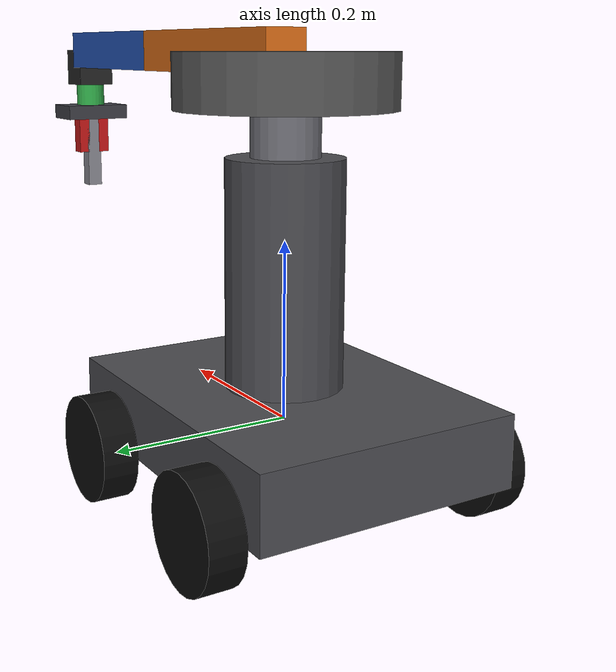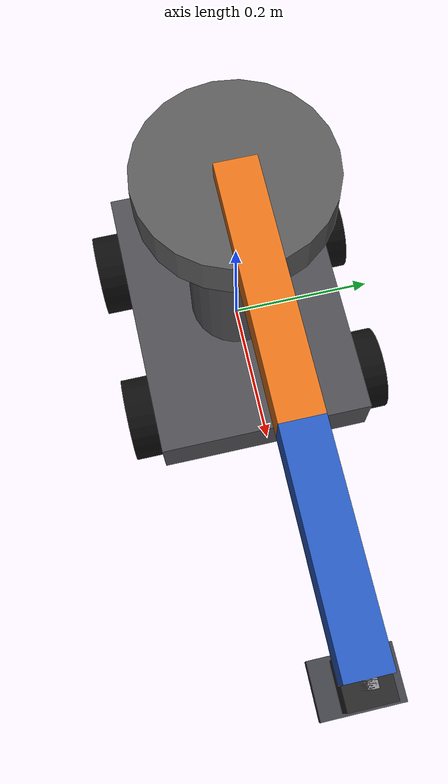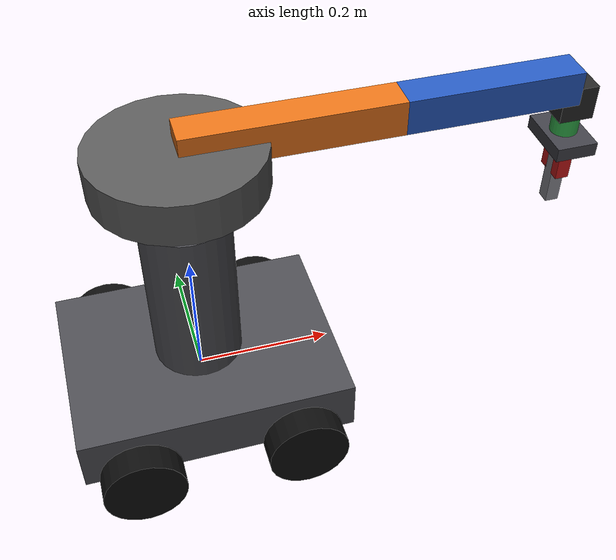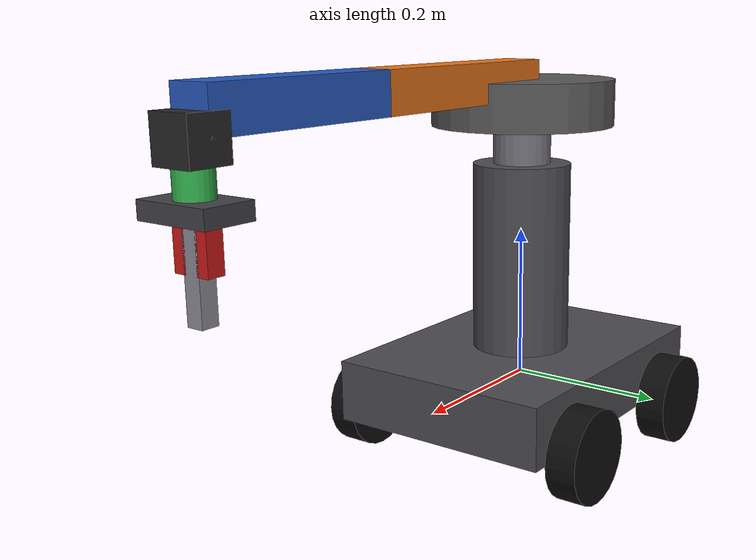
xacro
<?xml version="1.0"?>
<robot name="scara_arm" xmlns:xacro="http://www.ros.org/wiki/xacro">

  <!-- sim_world:=true (used by teleop.launch.py) adds a world root with virtual joints for the  -->
  <!-- base pose, plus a pickable object and a place pad, so everything renders in RobotModel.  -->
  <xacro:arg name="sim_world" default="false"/>

  <!-- CONSTANTS / DIMENSIONS                                        -->
  <xacro:property name="base_radius"  value="0.12"/>
  <xacro:property name="base_height"  value="0.06"/>

  <xacro:property name="link1_len"    value="0.30"/>
  <xacro:property name="link2_len"    value="0.25"/>
  <xacro:property name="link_width"   value="0.05"/>
  <xacro:property name="link_height"  value="0.05"/>

  <xacro:property name="slider_side"  value="0.05"/>
  <xacro:property name="slider_travel" value="0.20"/>   <!-- prismatic joint3 range -->
  <xacro:property name="rail_thickness" value="0.02"/>  <!-- visual guide rail, purely cosmetic -->

  <xacro:property name="wrist_radius" value="0.02"/>
  <xacro:property name="wrist_height" value="0.03"/>

  <xacro:property name="gripper_base_x" value="0.06"/>
  <xacro:property name="gripper_base_y" value="0.09"/>
  <xacro:property name="gripper_base_z" value="0.02"/>

  <xacro:property name="finger_x" value="0.02"/>
  <xacro:property name="finger_y" value="0.015"/>
  <xacro:property name="finger_z" value="0.05"/>
  <xacro:property name="finger_open_y" value="0.035"/>   <!-- half-gap between fingers, fully open -->
  <xacro:property name="finger_travel" value="0.02"/>    <!-- how far each finger slides to close -->

  <xacro:property name="PI" value="3.14159265"/>

  <!-- Mobile chassis + tyres -->
  <xacro:property name="chassis_x" value="0.40"/>
  <xacro:property name="chassis_y" value="0.30"/>
  <xacro:property name="chassis_z" value="0.08"/>
  <xacro:property name="wheel_radius" value="0.06"/>
  <xacro:property name="wheel_width"  value="0.04"/>
  <xacro:property name="wheel_track"  value="${chassis_y + wheel_width}"/>  <!-- left-right distance between wheel centers -->

  <!-- Crane lift column – telescoping design:                        -->
  <!--   outer_sleeve : fixed to chassis, purely visual housing        -->
  <!--   inner_mast   : slides up/down inside the sleeve (prismatic)   -->
  <xacro:property name="outer_sleeve_radius" value="0.065"/>
  <xacro:property name="outer_sleeve_height" value="0.25"/>   <!-- fixed housing height -->
  <xacro:property name="mast_radius" value="0.038"/>          <!-- inner column, thinner so it looks nested -->
  <xacro:property name="mast_len" value="0.30"/>
  <xacro:property name="crane_lift_travel" value="0.10"/>
  <xacro:property name="crane_lift_down" value="0.14"/>       <!-- 0.14 puts the mast bottom at ground level -->

  <!-- MATERIALS                                                     -->
  <material name="base_grey">   <color rgba="0.35 0.35 0.35 1.0"/> </material>
  <material name="arm_orange">  <color rgba="0.90 0.45 0.10 1.0"/> </material>
  <material name="arm_blue">    <color rgba="0.15 0.35 0.75 1.0"/> </material>
  <material name="slider_dark"> <color rgba="0.15 0.15 0.15 1.0"/> </material>
  <material name="rail_grey">   <color rgba="0.55 0.55 0.58 1.0"/> </material>
  <material name="wrist_green"> <color rgba="0.20 0.70 0.30 1.0"/> </material>
  <material name="gripper_grey"><color rgba="0.25 0.25 0.28 1.0"/> </material>
  <material name="finger_red">  <color rgba="0.80 0.10 0.10 1.0"/> </material>
  <material name="chassis_grey"><color rgba="0.30 0.30 0.32 1.0"/> </material>
  <material name="wheel_black"> <color rgba="0.05 0.05 0.05 1.0"/> </material>
  <material name="mast_grey">   <color rgba="0.45 0.45 0.48 1.0"/> </material>
  <material name="payload_yellow"><color rgba="0.95 0.85 0.10 1.0"/> </material>
  <material name="pad_green">   <color rgba="0.15 0.75 0.30 1.0"/> </material>

  <!-- REUSABLE INERTIA MACROS                                       -->
  <xacro:macro name="box_inertial" params="mass x y z">
    <inertial>
      <mass value="${mass}"/>
      <inertia
        ixx="${(1/12.0) * mass * (y*y + z*z)}" ixy="0.0" ixz="0.0"
        iyy="${(1/12.0) * mass * (x*x + z*z)}" iyz="0.0"
        izz="${(1/12.0) * mass * (x*x + y*y)}"/>
    </inertial>
  </xacro:macro>

  <xacro:macro name="cylinder_inertial" params="mass r h">
    <inertial>
      <mass value="${mass}"/>
      <inertia
        ixx="${(1/12.0) * mass * (3*r*r + h*h)}" ixy="0.0" ixz="0.0"
        iyy="${(1/12.0) * mass * (3*r*r + h*h)}" iyz="0.0"
        izz="${0.5 * mass * r * r}"/>
    </inertial>
  </xacro:macro>

  <!-- MOBILE CHASSIS                                                 -->
  <!-- chassis_link has no parent joint here. An external node          -->
  <!-- ("fake_diff_drive") publishes the world->chassis_link TF at    -->
  <!-- runtime based on how far the wheels have turned, so the robot  -->
  <!-- actually translates instead of just spinning in place.         -->
  <link name="chassis_link">
    <visual>
      <origin xyz="0 0 0" rpy="0 0 0"/>
      <geometry><box size="${chassis_x} ${chassis_y} ${chassis_z}"/></geometry>
      <material name="chassis_grey"/>
    </visual>
    <collision>
      <origin xyz="0 0 0" rpy="0 0 0"/>
      <geometry><box size="${chassis_x} ${chassis_y} ${chassis_z}"/></geometry>
    </collision>
    <xacro:box_inertial mass="4.0" x="${chassis_x}" y="${chassis_y}" z="${chassis_z}"/>
  </link>

  <xacro:if value="$(arg sim_world)">
    <link name="world"/>

    <!-- Virtual planar base: x, y and yaw joints let a node place the whole robot in the world. -->
    <link name="chassis_x_link"/>
    <link name="chassis_y_link"/>
    <joint name="chassis_x_joint" type="prismatic">
      <parent link="world"/>
      <child link="chassis_x_link"/>
      <axis xyz="1 0 0"/>
      <limit lower="-100" upper="100" effort="1000" velocity="10"/>
    </joint>
    <joint name="chassis_y_joint" type="prismatic">
      <parent link="chassis_x_link"/>
      <child link="chassis_y_link"/>
      <axis xyz="0 1 0"/>
      <limit lower="-100" upper="100" effort="1000" velocity="10"/>
    </joint>
    <joint name="chassis_yaw_joint" type="continuous">
      <parent link="chassis_y_link"/>
      <child link="chassis_link"/>
      <origin xyz="0 0 ${wheel_radius + chassis_z/2}" rpy="0 0 0"/>
      <axis xyz="0 0 1"/>
    </joint>

    <!-- Pickable object: free x, y, z, yaw relative to world (the teleop node drives these). -->
    <link name="obj_x_link"/>
    <link name="obj_y_link"/>
    <link name="obj_z_link"/>
    <joint name="obj_x_joint" type="prismatic">
      <parent link="world"/>
      <child link="obj_x_link"/>
      <axis xyz="1 0 0"/>
      <limit lower="-100" upper="100" effort="1000" velocity="10"/>
    </joint>
    <joint name="obj_y_joint" type="prismatic">
      <parent link="obj_x_link"/>
      <child link="obj_y_link"/>
      <axis xyz="0 1 0"/>
      <limit lower="-100" upper="100" effort="1000" velocity="10"/>
    </joint>
    <joint name="obj_z_joint" type="prismatic">
      <parent link="obj_y_link"/>
      <child link="obj_z_link"/>
      <axis xyz="0 0 1"/>
      <limit lower="-1" upper="5" effort="1000" velocity="10"/>
    </joint>
    <joint name="obj_yaw_joint" type="continuous">
      <parent link="obj_z_link"/>
      <child link="payload"/>
      <axis xyz="0 0 1"/>
    </joint>
    <link name="payload">
      <visual>
        <geometry><box size="0.04 0.04 0.04"/></geometry>
        <material name="payload_yellow"/>
      </visual>
    </link>

    <!-- ── CARGO 2 (RED) ─────────────────────────────────────────────────── -->
    <link name="cargo2_x_link"/>
    <link name="cargo2_y_link"/>
    <link name="cargo2_z_link"/>
    <joint name="cargo2_x_joint" type="prismatic">
      <parent link="world"/><child link="cargo2_x_link"/>
      <axis xyz="1 0 0"/>
      <limit lower="-100" upper="100" effort="1000" velocity="10"/>
    </joint>
    <joint name="cargo2_y_joint" type="prismatic">
      <parent link="cargo2_x_link"/><child link="cargo2_y_link"/>
      <axis xyz="0 1 0"/>
      <limit lower="-100" upper="100" effort="1000" velocity="10"/>
    </joint>
    <joint name="cargo2_z_joint" type="prismatic">
      <parent link="cargo2_y_link"/><child link="cargo2_z_link"/>
      <axis xyz="0 0 1"/>
      <limit lower="-1" upper="5" effort="1000" velocity="10"/>
    </joint>
    <joint name="cargo2_yaw_joint" type="continuous">
      <parent link="cargo2_z_link"/><child link="cargo2_payload"/>
      <axis xyz="0 0 1"/>
    </joint>
    <link name="cargo2_payload">
      <visual>
        <geometry><box size="0.04 0.04 0.04"/></geometry>
        <material name="finger_red"/>
      </visual>
    </link>

    <!-- ── CARGO 3 (BLUE) ────────────────────────────────────────────────── -->
    <link name="cargo3_x_link"/>
    <link name="cargo3_y_link"/>
    <link name="cargo3_z_link"/>
    <joint name="cargo3_x_joint" type="prismatic">
      <parent link="world"/><child link="cargo3_x_link"/>
      <axis xyz="1 0 0"/>
      <limit lower="-100" upper="100" effort="1000" velocity="10"/>
    </joint>
    <joint name="cargo3_y_joint" type="prismatic">
      <parent link="cargo3_x_link"/><child link="cargo3_y_link"/>
      <axis xyz="0 1 0"/>
      <limit lower="-100" upper="100" effort="1000" velocity="10"/>
    </joint>
    <joint name="cargo3_z_joint" type="prismatic">
      <parent link="cargo3_y_link"/><child link="cargo3_z_link"/>
      <axis xyz="0 0 1"/>
      <limit lower="-1" upper="5" effort="1000" velocity="10"/>
    </joint>
    <joint name="cargo3_yaw_joint" type="continuous">
      <parent link="cargo3_z_link"/><child link="cargo3_payload"/>
      <axis xyz="0 0 1"/>
    </joint>
    <link name="cargo3_payload">
      <visual>
        <geometry><box size="0.04 0.04 0.04"/></geometry>
        <material name="arm_blue"/>
      </visual>
    </link>

    <!-- Place pad on the ground -->
    <joint name="pad_joint" type="fixed">
      <parent link="world"/>
      <child link="pad"/>
      <origin xyz="0.30 -0.32 0.002" rpy="0 0 0"/>
    </joint>
    <link name="pad">
      <visual>
        <geometry><box size="0.12 0.12 0.004"/></geometry>
        <material name="pad_green"/>
      </visual>
    </link>

  </xacro:if>

  <!-- Four tyres. The 90deg roll about X lays each cylinder on its side so its  -->
  <!-- rotational axis (local Z, matching the joint's axis) points along Y,      -->
  <!-- giving a properly oriented rolling wheel.                                 -->
  <xacro:macro name="wheel" params="name x_off y_off">
    <joint name="${name}_wheel_joint" type="continuous">
      <parent link="chassis_link"/>
      <child link="${name}_wheel"/>
      <origin xyz="${x_off} ${y_off} ${-chassis_z/2}" rpy="1.5708 0 0"/>
      <axis xyz="0 0 1"/>
      <limit effort="10.0" velocity="10.0"/>
    </joint>
    <link name="${name}_wheel">
      <visual>
        <geometry><cylinder radius="${wheel_radius}" length="${wheel_width}"/></geometry>
        <material name="wheel_black"/>
      </visual>
      <collision>
        <geometry><cylinder radius="${wheel_radius}" length="${wheel_width}"/></geometry>
      </collision>
      <xacro:cylinder_inertial mass="0.3" r="${wheel_radius}" h="${wheel_width}"/>
    </link>
  </xacro:macro>

  <!-- Rear wheel on each side mimics its front wheel 1:1, so the two wheels on   -->
  <!-- a side always spin together like they would on a real rigid axle, and     -->
  <!-- only ONE slider per side shows up in the GUI (front_left / front_right).  -->
  <xacro:macro name="wheel_mimic" params="name x_off y_off mimic_joint">
    <joint name="${name}_wheel_joint" type="continuous">
      <parent link="chassis_link"/>
      <child link="${name}_wheel"/>
      <origin xyz="${x_off} ${y_off} ${-chassis_z/2}" rpy="1.5708 0 0"/>
      <axis xyz="0 0 1"/>
      <limit effort="10.0" velocity="10.0"/>
      <mimic joint="${mimic_joint}" multiplier="1.0" offset="0.0"/>
    </joint>
    <link name="${name}_wheel">
      <visual>
        <geometry><cylinder radius="${wheel_radius}" length="${wheel_width}"/></geometry>
        <material name="wheel_black"/>
      </visual>
      <collision>
        <geometry><cylinder radius="${wheel_radius}" length="${wheel_width}"/></geometry>
      </collision>
      <xacro:cylinder_inertial mass="0.3" r="${wheel_radius}" h="${wheel_width}"/>
    </link>
  </xacro:macro>

  <xacro:wheel       name="front_left"  x_off="${chassis_x/2 - 0.08}"    y_off="${chassis_y/2 + wheel_width/2}"/>
  <xacro:wheel       name="front_right" x_off="${chassis_x/2 - 0.08}"    y_off="${-(chassis_y/2 + wheel_width/2)}"/>
  <xacro:wheel_mimic name="rear_left"   x_off="${-(chassis_x/2 - 0.08)}" y_off="${chassis_y/2 + wheel_width/2}"    mimic_joint="front_left_wheel_joint"/>
  <xacro:wheel_mimic name="rear_right"  x_off="${-(chassis_x/2 - 0.08)}" y_off="${-(chassis_y/2 + wheel_width/2)}" mimic_joint="front_right_wheel_joint"/>

  <!-- CRANE LIFT – TELESCOPING DESIGN                               -->
  <!-- A fixed OUTER SLEEVE bolted to the chassis (cosmetic housing) -->
  <!-- and a thinner INNER COLUMN that slides up/down through it.    -->

  <!-- Fixed outer sleeve (housing) – does NOT move -->
  <joint name="outer_sleeve_joint" type="fixed">
    <parent link="chassis_link"/>
    <child link="outer_sleeve_link"/>
    <origin xyz="0 0 ${chassis_z/2}" rpy="0 0 0"/>
  </joint>

  <link name="outer_sleeve_link">
    <visual>
      <origin xyz="0 0 ${outer_sleeve_height/2}" rpy="0 0 0"/>
      <geometry><cylinder radius="${outer_sleeve_radius}" length="${outer_sleeve_height}"/></geometry>
      <material name="chassis_grey"/>
    </visual>
    <collision>
      <origin xyz="0 0 ${outer_sleeve_height/2}" rpy="0 0 0"/>
      <geometry><cylinder radius="${outer_sleeve_radius}" length="${outer_sleeve_height}"/></geometry>
    </collision>
    <xacro:cylinder_inertial mass="0.5" r="${outer_sleeve_radius}" h="${outer_sleeve_height}"/>
  </link>

  <!-- Inner column (slides up/down inside the sleeve) -->
  <joint name="crane_lift_joint" type="prismatic">
    <parent link="chassis_link"/>
    <child link="mast_link"/>
    <origin xyz="0 0 ${chassis_z/2}" rpy="0 0 0"/>
    <axis xyz="0 0 1"/>
    <limit lower="${-crane_lift_down}" upper="${crane_lift_travel}" effort="50.0" velocity="0.1"/>
  </joint>

  <link name="mast_link">
    <visual>
      <origin xyz="0 0 ${mast_len/2}" rpy="0 0 0"/>
      <geometry><cylinder radius="${mast_radius}" length="${mast_len}"/></geometry>
      <material name="mast_grey"/>
    </visual>
    <collision>
      <origin xyz="0 0 ${mast_len/2}" rpy="0 0 0"/>
      <geometry><cylinder radius="${mast_radius}" length="${mast_len}"/></geometry>
    </collision>
    <xacro:cylinder_inertial mass="1.5" r="${mast_radius}" h="${mast_len}"/>
  </link>

  <joint name="mast_to_base" type="fixed">
    <parent link="mast_link"/>
    <child link="base_link"/>
    <origin xyz="0 0 ${mast_len}" rpy="0 0 0"/>
  </joint>

  <!-- BASE LINK (turntable, joint1 rotates the arm from here)       -->
  <link name="base_link">
    <visual>
      <origin xyz="0 0 ${base_height/2}" rpy="0 0 0"/>
      <geometry><cylinder radius="${base_radius}" length="${base_height}"/></geometry>
      <material name="base_grey"/>
    </visual>
    <collision>
      <origin xyz="0 0 ${base_height/2}" rpy="0 0 0"/>
      <geometry><cylinder radius="${base_radius}" length="${base_height}"/></geometry>
    </collision>
    <xacro:cylinder_inertial mass="2.0" r="${base_radius}" h="${base_height}"/>
  </link>

  <!-- JOINT 1 (revolute, Z-up) : base_link -> link1 (upper arm)     -->
  <joint name="joint1" type="revolute">
    <parent link="base_link"/>
    <child link="link1"/>
    <origin xyz="0 0 ${base_height}" rpy="0 0 0"/>
    <axis xyz="0 0 1"/>
    <limit lower="${-PI}" upper="${PI}" effort="20.0" velocity="2.0"/>
  </joint>

  <link name="link1">
    <visual>
      <origin xyz="${link1_len/2} 0 0" rpy="0 0 0"/>
      <geometry><box size="${link1_len} ${link_width} ${link_height}"/></geometry>
      <material name="arm_orange"/>
    </visual>
    <collision>
      <origin xyz="${link1_len/2} 0 0" rpy="0 0 0"/>
      <geometry><box size="${link1_len} ${link_width} ${link_height}"/></geometry>
    </collision>
    <xacro:box_inertial mass="1.2" x="${link1_len}" y="${link_width}" z="${link_height}"/>
  </link>

  <!-- JOINT 2 (revolute, Z-up) : link1 -> link2 (forearm)           -->
  <joint name="joint2" type="revolute">
    <parent link="link1"/>
    <child link="link2"/>
    <origin xyz="${link1_len} 0 0" rpy="0 0 0"/>
    <axis xyz="0 0 1"/>
    <limit lower="${-2.8}" upper="${2.8}" effort="15.0" velocity="2.0"/>
  </joint>

  <link name="link2">
    <visual>
      <origin xyz="${link2_len/2} 0 0" rpy="0 0 0"/>
      <geometry><box size="${link2_len} ${link_width} ${link_height}"/></geometry>
      <material name="arm_blue"/>
    </visual>
    <collision>
      <origin xyz="${link2_len/2} 0 0" rpy="0 0 0"/>
      <geometry><box size="${link2_len} ${link_width} ${link_height}"/></geometry>
    </collision>
    <xacro:box_inertial mass="0.9" x="${link2_len}" y="${link_width}" z="${link_height}"/>
  </link>

  <!-- VISUAL RAIL (fixed, cosmetic only) : shows the Z-column that   -->
  <!-- the carriage (link3) actually slides along, so the prismatic  -->
  <!-- motion reads as a proper linear slide instead of a floating   -->
  <!-- cube.                                                          -->
  <joint name="rail_mount" type="fixed">
    <parent link="link2"/>
    <child link="z_rail"/>
    <origin xyz="${link2_len} 0 0" rpy="0 0 0"/>
  </joint>

  <link name="z_rail">
    <visual>
      <origin xyz="0 0 ${-slider_travel/2}" rpy="0 0 0"/>
      <geometry><box size="${rail_thickness} ${rail_thickness} ${slider_travel}"/></geometry>
      <material name="rail_grey"/>
    </visual>
    <!-- no collision on the rail: it's a visual guide, not a physical part -->
  </link>

  <!-- JOINT 3 (prismatic, Z) : link2 -> link3 (carriage on the rail) -->
  <!-- limit: 0 = fully retracted (flush with link2), -travel = down  -->
  <joint name="joint3" type="prismatic">
    <parent link="link2"/>
    <child link="link3"/>
    <origin xyz="${link2_len} 0 0" rpy="0 0 0"/>
    <axis xyz="0 0 1"/>
    <limit lower="${-slider_travel}" upper="0.0" effort="30.0" velocity="0.1"/>
  </joint>

  <link name="link3">
    <visual>
      <!-- hangs BELOW the mount point instead of straddling it, so it       -->
      <!-- sits flush against link2 at the retracted (0) position instead   -->
      <!-- of clipping through it -->
      <origin xyz="0 0 ${-slider_side/2}" rpy="0 0 0"/>
      <geometry><box size="${slider_side} ${slider_side} ${slider_side}"/></geometry>
      <material name="slider_dark"/>
    </visual>
    <collision>
      <origin xyz="0 0 ${-slider_side/2}" rpy="0 0 0"/>
      <geometry><box size="${slider_side} ${slider_side} ${slider_side}"/></geometry>
    </collision>
    <xacro:box_inertial mass="0.4" x="${slider_side}" y="${slider_side}" z="${slider_side}"/>
  </link>

  <!-- JOINT 4 (revolute, Z) : link3 -> link4 (wrist)                 -->
  <joint name="joint4" type="revolute">
    <parent link="link3"/>
    <child link="link4"/>
    <origin xyz="0 0 ${-slider_side - wrist_height/2}" rpy="0 0 0"/>
    <axis xyz="0 0 1"/>
    <limit lower="${-PI}" upper="${PI}" effort="5.0" velocity="3.0"/>
  </joint>

  <link name="link4">
    <visual>
      <origin xyz="0 0 0" rpy="0 0 0"/>
      <geometry><cylinder radius="${wrist_radius}" length="${wrist_height}"/></geometry>
      <material name="wrist_green"/>
    </visual>
    <collision>
      <origin xyz="0 0 0" rpy="0 0 0"/>
      <geometry><cylinder radius="${wrist_radius}" length="${wrist_height}"/></geometry>
    </collision>
    <xacro:cylinder_inertial mass="0.1" r="${wrist_radius}" h="${wrist_height}"/>
  </link>

  <!-- GRIPPER BASE (fixed to wrist)                                  -->
  <joint name="gripper_mount" type="fixed">
    <parent link="link4"/>
    <child link="gripper_base"/>
    <origin xyz="0 0 ${-wrist_height/2 - gripper_base_z/2}" rpy="0 0 0"/>
  </joint>

  <link name="gripper_base">
    <visual>
      <origin xyz="0 0 0" rpy="0 0 0"/>
      <geometry><box size="${gripper_base_x} ${gripper_base_y} ${gripper_base_z}"/></geometry>
      <material name="gripper_grey"/>
    </visual>
    <collision>
      <origin xyz="0 0 0" rpy="0 0 0"/>
      <geometry><box size="${gripper_base_x} ${gripper_base_y} ${gripper_base_z}"/></geometry>
    </collision>
    <xacro:box_inertial mass="0.15" x="${gripper_base_x}" y="${gripper_base_y}" z="${gripper_base_z}"/>
  </link>

  <!-- LEFT FINGER (prismatic, Y) : the driven jaw                    -->
  <!-- value 0 = closed, +finger_travel = fully open                 -->
  <joint name="left_finger_joint" type="prismatic">
    <parent link="gripper_base"/>
    <child link="left_finger"/>
    <origin xyz="0 ${finger_open_y - finger_travel} ${-gripper_base_z/2 - finger_z/2}" rpy="0 0 0"/>
    <axis xyz="0 1 0"/>
    <limit lower="0.0" upper="${finger_travel}" effort="5.0" velocity="0.05"/>
  </joint>

  <link name="left_finger">
    <visual>
      <origin xyz="0 0 0" rpy="0 0 0"/>
      <geometry><box size="${finger_x} ${finger_y} ${finger_z}"/></geometry>
      <material name="finger_red"/>
    </visual>
    <collision>
      <origin xyz="0 0 0" rpy="0 0 0"/>
      <geometry><box size="${finger_x} ${finger_y} ${finger_z}"/></geometry>
    </collision>
    <xacro:box_inertial mass="0.05" x="${finger_x}" y="${finger_y}" z="${finger_z}"/>
  </link>

  <!-- RIGHT FINGER : mirrors the left finger via a mimic joint, so  -->
  <!-- only ONE slider (left_finger_joint) appears in the GUI and    -->
  <!-- both jaws open/close together, symmetrically.                 -->
  <joint name="right_finger_joint" type="prismatic">
    <parent link="gripper_base"/>
    <child link="right_finger"/>
    <origin xyz="0 ${-(finger_open_y - finger_travel)} ${-gripper_base_z/2 - finger_z/2}" rpy="0 0 0"/>
    <axis xyz="0 1 0"/>
    <limit lower="${-finger_travel}" upper="0.0" effort="5.0" velocity="0.05"/>
    <mimic joint="left_finger_joint" multiplier="-1.0" offset="0.0"/>
  </joint>

  <link name="right_finger">
    <visual>
      <origin xyz="0 0 0" rpy="0 0 0"/>
      <geometry><box size="${finger_x} ${finger_y} ${finger_z}"/></geometry>
      <material name="finger_red"/>
    </visual>
    <collision>
      <origin xyz="0 0 0" rpy="0 0 0"/>
      <geometry><box size="${finger_x} ${finger_y} ${finger_z}"/></geometry>
    </collision>
    <xacro:box_inertial mass="0.05" x="${finger_x}" y="${finger_y}" z="${finger_z}"/>
  </link>

  <!-- Tool-center-point frame: sits at the fingertip midpoint, useful later for IK/MoveIt -->
  <joint name="tcp_joint" type="fixed">
    <parent link="gripper_base"/>
    <child link="tool0"/>
    <origin xyz="0 0 ${-gripper_base_z/2 - finger_z}" rpy="0 0 0"/>
  </joint>
  <link name="tool0"/>

</robot>
